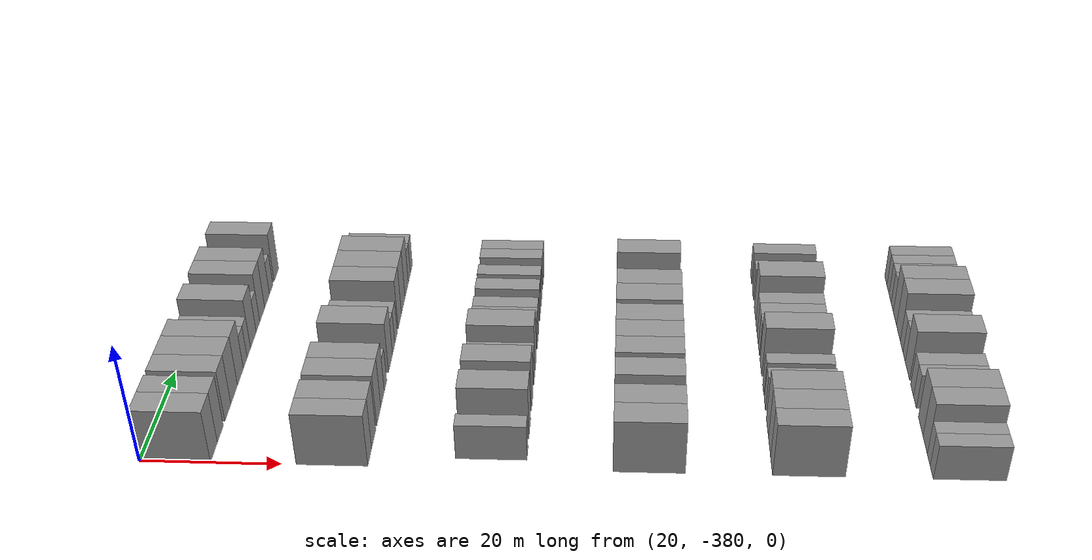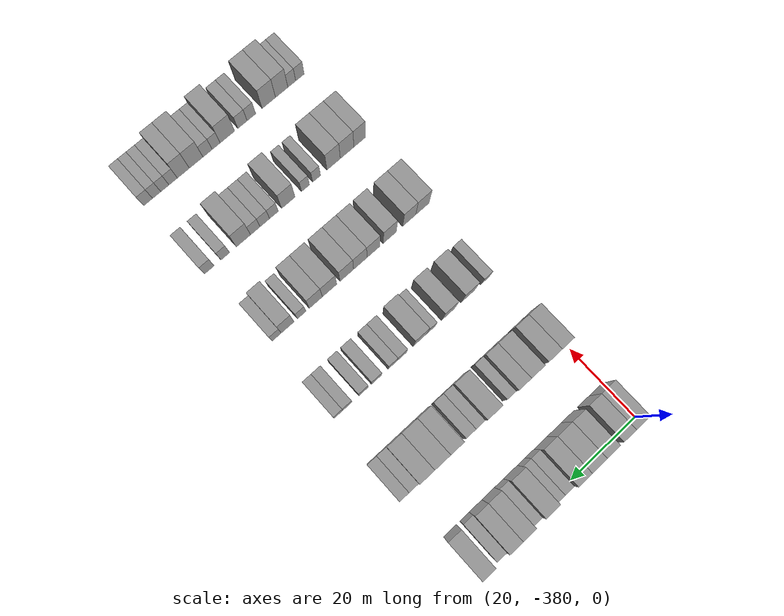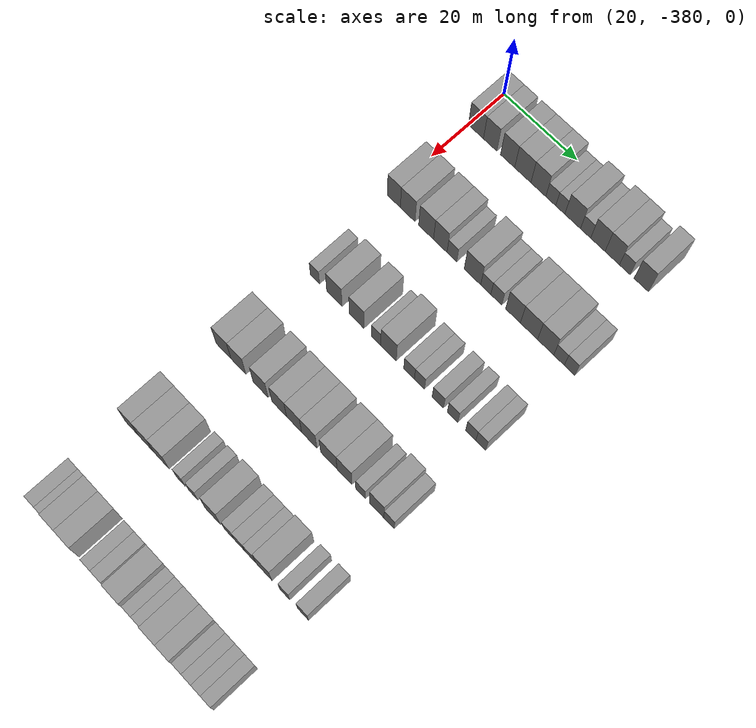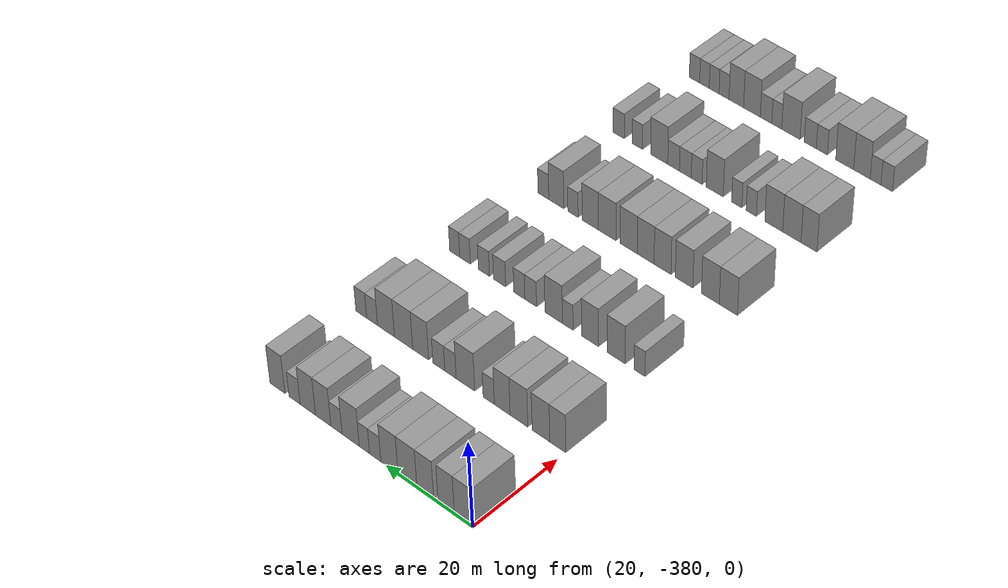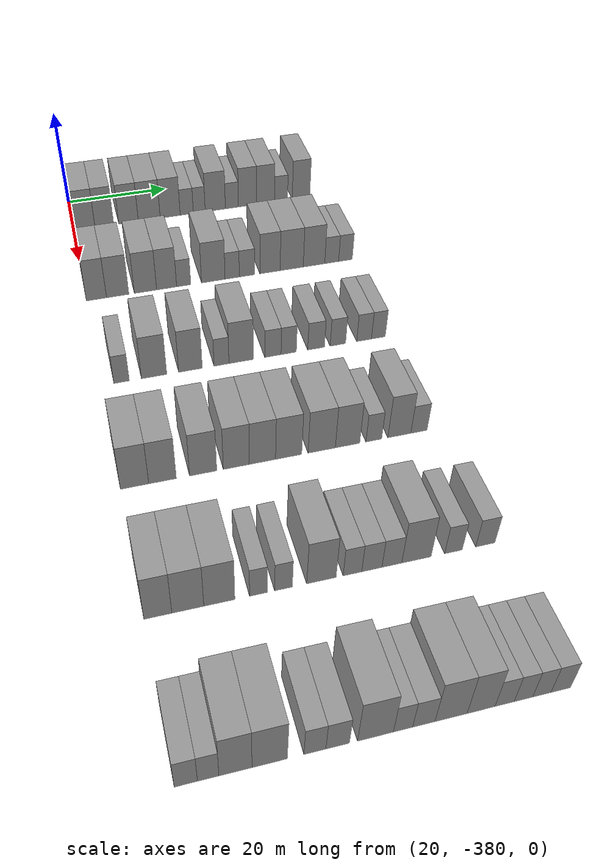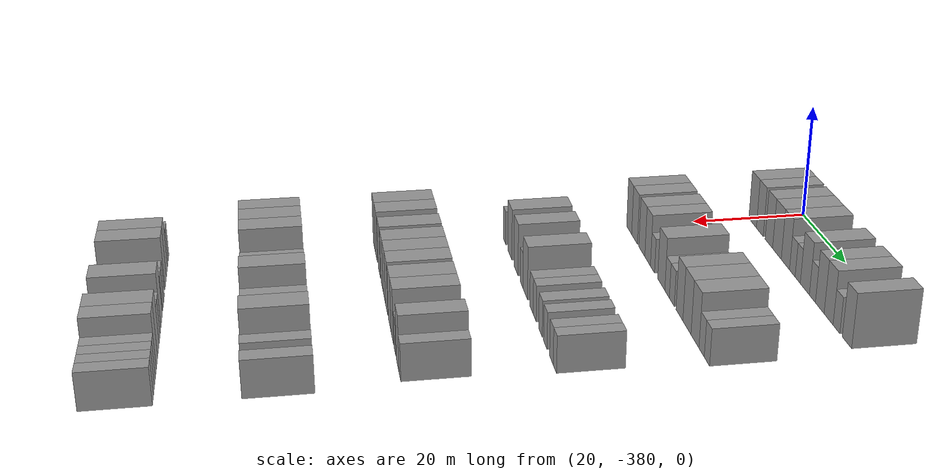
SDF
<sdf version="1.6">
 <world name="default">
  <model name="building_1">
   <static>1</static>
   <pose>25.0000 -377.9014 0 0.000000 0.000000 0.000000</pose>
   <link name="link">
    <pose>0 0 4.50 0 0 0</pose>
    <collision name="collision"><geometry><box><size>10.0000 4.1972 9.0000</size></box></geometry></collision>
    <visual name="visual">
     <cast_shadows>0</cast_shadows>
     <geometry><box><size>10.0000 4.1972 9.0000</size></box></geometry>
     <material>
      <script>
       <uri>model://grey_wall/materials/scripts</uri>
       <uri>model://grey_wall/materials/textures</uri>
       <name>vrc/grey_wall</name>
      </script>
     </material>
    </visual>
   </link>
  </model>
  <model name="building_2">
   <static>1</static>
   <pose>25.0000 -373.9525 0 0.000000 0.000000 0.000000</pose>
   <link name="link">
    <pose>0 0 4.50 0 0 0</pose>
    <collision name="collision"><geometry><box><size>10.0000 3.7007 9.0000</size></box></geometry></collision>
    <visual name="visual">
     <cast_shadows>0</cast_shadows>
     <geometry><box><size>10.0000 3.7007 9.0000</size></box></geometry>
     <material>
      <script>
       <uri>model://grey_wall/materials/scripts</uri>
       <uri>model://grey_wall/materials/textures</uri>
       <name>vrc/grey_wall</name>
      </script>
     </material>
    </visual>
   </link>
  </model>
  <model name="building_3">
   <static>1</static>
   <pose>25.0000 -369.1578 0 0.000000 0.000000 0.000000</pose>
   <link name="link">
    <pose>0 0 4.50 0 0 0</pose>
    <collision name="collision"><geometry><box><size>10.0000 3.8887 9.0000</size></box></geometry></collision>
    <visual name="visual">
     <cast_shadows>0</cast_shadows>
     <geometry><box><size>10.0000 3.8887 9.0000</size></box></geometry>
     <material>
      <script>
       <uri>model://grey_wall/materials/scripts</uri>
       <uri>model://grey_wall/materials/textures</uri>
       <name>vrc/grey_wall</name>
      </script>
     </material>
    </visual>
   </link>
  </model>
  <model name="building_4">
   <static>1</static>
   <pose>25.0000 -365.0094 0 0.000000 0.000000 0.000000</pose>
   <link name="link">
    <pose>0 0 4.50 0 0 0</pose>
    <collision name="collision"><geometry><box><size>10.0000 4.4080 9.0000</size></box></geometry></collision>
    <visual name="visual">
     <cast_shadows>0</cast_shadows>
     <geometry><box><size>10.0000 4.4080 9.0000</size></box></geometry>
     <material>
      <script>
       <uri>model://grey_wall/materials/scripts</uri>
       <uri>model://grey_wall/materials/textures</uri>
       <name>vrc/grey_wall</name>
      </script>
     </material>
    </visual>
   </link>
  </model>
  <model name="building_5">
   <static>1</static>
   <pose>25.0000 -360.7854 0 0.000000 0.000000 0.000000</pose>
   <link name="link">
    <pose>0 0 4.50 0 0 0</pose>
    <collision name="collision"><geometry><box><size>10.0000 4.0401 9.0000</size></box></geometry></collision>
    <visual name="visual">
     <cast_shadows>0</cast_shadows>
     <geometry><box><size>10.0000 4.0401 9.0000</size></box></geometry>
     <material>
      <script>
       <uri>model://grey_wall/materials/scripts</uri>
       <uri>model://grey_wall/materials/textures</uri>
       <name>vrc/grey_wall</name>
      </script>
     </material>
    </visual>
   </link>
  </model>
  <model name="building_6">
   <static>1</static>
   <pose>25.0000 -357.4255 0 0.000000 0.000000 0.000000</pose>
   <link name="link">
    <pose>0 0 3.00 0 0 0</pose>
    <collision name="collision"><geometry><box><size>10.0000 2.6798 6.0000</size></box></geometry></collision>
    <visual name="visual">
     <cast_shadows>0</cast_shadows>
     <geometry><box><size>10.0000 2.6798 6.0000</size></box></geometry>
     <material>
      <script>
       <uri>model://grey_wall/materials/scripts</uri>
       <uri>model://grey_wall/materials/textures</uri>
       <name>vrc/grey_wall</name>
      </script>
     </material>
    </visual>
   </link>
  </model>
  <model name="building_7">
   <static>1</static>
   <pose>25.0000 -354.8704 0 0.000000 0.000000 0.000000</pose>
   <link name="link">
    <pose>0 0 3.00 0 0 0</pose>
    <collision name="collision"><geometry><box><size>10.0000 2.4304 6.0000</size></box></geometry></collision>
    <visual name="visual">
     <cast_shadows>0</cast_shadows>
     <geometry><box><size>10.0000 2.4304 6.0000</size></box></geometry>
     <material>
      <script>
       <uri>model://grey_wall/materials/scripts</uri>
       <uri>model://grey_wall/materials/textures</uri>
       <name>vrc/grey_wall</name>
      </script>
     </material>
    </visual>
   </link>
  </model>
  <model name="building_8">
   <static>1</static>
   <pose>25.0000 -351.5773 0 0.000000 0.000000 0.000000</pose>
   <link name="link">
    <pose>0 0 4.50 0 0 0</pose>
    <collision name="collision"><geometry><box><size>10.0000 4.1559 9.0000</size></box></geometry></collision>
    <visual name="visual">
     <cast_shadows>0</cast_shadows>
     <geometry><box><size>10.0000 4.1559 9.0000</size></box></geometry>
     <material>
      <script>
       <uri>model://grey_wall/materials/scripts</uri>
       <uri>model://grey_wall/materials/textures</uri>
       <name>vrc/grey_wall</name>
      </script>
     </material>
    </visual>
   </link>
  </model>
  <model name="building_9">
   <static>1</static>
   <pose>25.0000 -348.1490 0 0.000000 0.000000 0.000000</pose>
   <link name="link">
    <pose>0 0 3.00 0 0 0</pose>
    <collision name="collision"><geometry><box><size>10.0000 2.7007 6.0000</size></box></geometry></collision>
    <visual name="visual">
     <cast_shadows>0</cast_shadows>
     <geometry><box><size>10.0000 2.7007 6.0000</size></box></geometry>
     <material>
      <script>
       <uri>model://grey_wall/materials/scripts</uri>
       <uri>model://grey_wall/materials/textures</uri>
       <name>vrc/grey_wall</name>
      </script>
     </material>
    </visual>
   </link>
  </model>
  <model name="building_10">
   <static>1</static>
   <pose>25.0000 -344.9133 0 0.000000 0.000000 0.000000</pose>
   <link name="link">
    <pose>0 0 4.50 0 0 0</pose>
    <collision name="collision"><geometry><box><size>10.0000 3.7708 9.0000</size></box></geometry></collision>
    <visual name="visual">
     <cast_shadows>0</cast_shadows>
     <geometry><box><size>10.0000 3.7708 9.0000</size></box></geometry>
     <material>
      <script>
       <uri>model://grey_wall/materials/scripts</uri>
       <uri>model://grey_wall/materials/textures</uri>
       <name>vrc/grey_wall</name>
      </script>
     </material>
    </visual>
   </link>
  </model>
  <model name="building_11">
   <static>1</static>
   <pose>25.0000 -341.1425 0 0.000000 0.000000 0.000000</pose>
   <link name="link">
    <pose>0 0 4.50 0 0 0</pose>
    <collision name="collision"><geometry><box><size>10.0000 3.7708 9.0000</size></box></geometry></collision>
    <visual name="visual">
     <cast_shadows>0</cast_shadows>
     <geometry><box><size>10.0000 3.7708 9.0000</size></box></geometry>
     <material>
      <script>
       <uri>model://grey_wall/materials/scripts</uri>
       <uri>model://grey_wall/materials/textures</uri>
       <name>vrc/grey_wall</name>
      </script>
     </material>
    </visual>
   </link>
  </model>
  <model name="building_12">
   <static>1</static>
   <pose>25.0000 -337.8733 0 0.000000 0.000000 0.000000</pose>
   <link name="link">
    <pose>0 0 3.00 0 0 0</pose>
    <collision name="collision"><geometry><box><size>10.0000 2.7677 6.0000</size></box></geometry></collision>
    <visual name="visual">
     <cast_shadows>0</cast_shadows>
     <geometry><box><size>10.0000 2.7677 6.0000</size></box></geometry>
     <material>
      <script>
       <uri>model://grey_wall/materials/scripts</uri>
       <uri>model://grey_wall/materials/textures</uri>
       <name>vrc/grey_wall</name>
      </script>
     </material>
    </visual>
   </link>
  </model>
  <model name="building_13">
   <static>1</static>
   <pose>25.0000 -333.6231 0 0.000000 0.000000 0.000000</pose>
   <link name="link">
    <pose>0 0 4.50 0 0 0</pose>
    <collision name="collision"><geometry><box><size>10.0000 3.7328 9.0000</size></box></geometry></collision>
    <visual name="visual">
     <cast_shadows>0</cast_shadows>
     <geometry><box><size>10.0000 3.7328 9.0000</size></box></geometry>
     <material>
      <script>
       <uri>model://grey_wall/materials/scripts</uri>
       <uri>model://grey_wall/materials/textures</uri>
       <name>vrc/grey_wall</name>
      </script>
     </material>
    </visual>
   </link>
  </model>
  <model name="building_191">
   <static>1</static>
   <pose>47.0000 -378.1825 0 0.000000 0.000000 0.000000</pose>
   <link name="link">
    <pose>0 0 4.50 0 0 0</pose>
    <collision name="collision"><geometry><box><size>10.0000 3.6349 9.0000</size></box></geometry></collision>
    <visual name="visual">
     <cast_shadows>0</cast_shadows>
     <geometry><box><size>10.0000 3.6349 9.0000</size></box></geometry>
     <material>
      <script>
       <uri>model://grey_wall/materials/scripts</uri>
       <uri>model://grey_wall/materials/textures</uri>
       <name>vrc/grey_wall</name>
      </script>
     </material>
    </visual>
   </link>
  </model>
  <model name="building_192">
   <static>1</static>
   <pose>47.0000 -374.3386 0 0.000000 0.000000 0.000000</pose>
   <link name="link">
    <pose>0 0 4.50 0 0 0</pose>
    <collision name="collision"><geometry><box><size>10.0000 4.0531 9.0000</size></box></geometry></collision>
    <visual name="visual">
     <cast_shadows>0</cast_shadows>
     <geometry><box><size>10.0000 4.0531 9.0000</size></box></geometry>
     <material>
      <script>
       <uri>model://grey_wall/materials/scripts</uri>
       <uri>model://grey_wall/materials/textures</uri>
       <name>vrc/grey_wall</name>
      </script>
     </material>
    </visual>
   </link>
  </model>
  <model name="building_193">
   <static>1</static>
   <pose>47.0000 -369.2678 0 0.000000 0.000000 0.000000</pose>
   <link name="link">
    <pose>0 0 4.50 0 0 0</pose>
    <collision name="collision"><geometry><box><size>10.0000 4.0885 9.0000</size></box></geometry></collision>
    <visual name="visual">
     <cast_shadows>0</cast_shadows>
     <geometry><box><size>10.0000 4.0885 9.0000</size></box></geometry>
     <material>
      <script>
       <uri>model://grey_wall/materials/scripts</uri>
       <uri>model://grey_wall/materials/textures</uri>
       <name>vrc/grey_wall</name>
      </script>
     </material>
    </visual>
   </link>
  </model>
  <model name="building_194">
   <static>1</static>
   <pose>47.0000 -365.3799 0 0.000000 0.000000 0.000000</pose>
   <link name="link">
    <pose>0 0 4.50 0 0 0</pose>
    <collision name="collision"><geometry><box><size>10.0000 3.6872 9.0000</size></box></geometry></collision>
    <visual name="visual">
     <cast_shadows>0</cast_shadows>
     <geometry><box><size>10.0000 3.6872 9.0000</size></box></geometry>
     <material>
      <script>
       <uri>model://grey_wall/materials/scripts</uri>
       <uri>model://grey_wall/materials/textures</uri>
       <name>vrc/grey_wall</name>
      </script>
     </material>
    </visual>
   </link>
  </model>
  <model name="building_195">
   <static>1</static>
   <pose>47.0000 -362.2163 0 0.000000 0.000000 0.000000</pose>
   <link name="link">
    <pose>0 0 3.00 0 0 0</pose>
    <collision name="collision"><geometry><box><size>10.0000 2.6401 6.0000</size></box></geometry></collision>
    <visual name="visual">
     <cast_shadows>0</cast_shadows>
     <geometry><box><size>10.0000 2.6401 6.0000</size></box></geometry>
     <material>
      <script>
       <uri>model://grey_wall/materials/scripts</uri>
       <uri>model://grey_wall/materials/textures</uri>
       <name>vrc/grey_wall</name>
      </script>
     </material>
    </visual>
   </link>
  </model>
  <model name="building_196">
   <static>1</static>
   <pose>47.0000 -356.6813 0 0.000000 0.000000 0.000000</pose>
   <link name="link">
    <pose>0 0 4.50 0 0 0</pose>
    <collision name="collision"><geometry><box><size>10.0000 4.4299 9.0000</size></box></geometry></collision>
    <visual name="visual">
     <cast_shadows>0</cast_shadows>
     <geometry><box><size>10.0000 4.4299 9.0000</size></box></geometry>
     <material>
      <script>
       <uri>model://grey_wall/materials/scripts</uri>
       <uri>model://grey_wall/materials/textures</uri>
       <name>vrc/grey_wall</name>
      </script>
     </material>
    </visual>
   </link>
  </model>
  <model name="building_197">
   <static>1</static>
   <pose>47.0000 -353.1163 0 0.000000 0.000000 0.000000</pose>
   <link name="link">
    <pose>0 0 3.00 0 0 0</pose>
    <collision name="collision"><geometry><box><size>10.0000 2.7001 6.0000</size></box></geometry></collision>
    <visual name="visual">
     <cast_shadows>0</cast_shadows>
     <geometry><box><size>10.0000 2.7001 6.0000</size></box></geometry>
     <material>
      <script>
       <uri>model://grey_wall/materials/scripts</uri>
       <uri>model://grey_wall/materials/textures</uri>
       <name>vrc/grey_wall</name>
      </script>
     </material>
    </visual>
   </link>
  </model>
  <model name="building_198">
   <static>1</static>
   <pose>47.0000 -350.3089 0 0.000000 0.000000 0.000000</pose>
   <link name="link">
    <pose>0 0 3.00 0 0 0</pose>
    <collision name="collision"><geometry><box><size>10.0000 2.9145 6.0000</size></box></geometry></collision>
    <visual name="visual">
     <cast_shadows>0</cast_shadows>
     <geometry><box><size>10.0000 2.9145 6.0000</size></box></geometry>
     <material>
      <script>
       <uri>model://grey_wall/materials/scripts</uri>
       <uri>model://grey_wall/materials/textures</uri>
       <name>vrc/grey_wall</name>
      </script>
     </material>
    </visual>
   </link>
  </model>
  <model name="building_199">
   <static>1</static>
   <pose>47.0000 -345.9016 0 0.000000 0.000000 0.000000</pose>
   <link name="link">
    <pose>0 0 4.50 0 0 0</pose>
    <collision name="collision"><geometry><box><size>10.0000 3.9001 9.0000</size></box></geometry></collision>
    <visual name="visual">
     <cast_shadows>0</cast_shadows>
     <geometry><box><size>10.0000 3.9001 9.0000</size></box></geometry>
     <material>
      <script>
       <uri>model://grey_wall/materials/scripts</uri>
       <uri>model://grey_wall/materials/textures</uri>
       <name>vrc/grey_wall</name>
      </script>
     </material>
    </visual>
   </link>
  </model>
  <model name="building_200">
   <static>1</static>
   <pose>47.0000 -341.7060 0 0.000000 0.000000 0.000000</pose>
   <link name="link">
    <pose>0 0 4.50 0 0 0</pose>
    <collision name="collision"><geometry><box><size>10.0000 4.4913 9.0000</size></box></geometry></collision>
    <visual name="visual">
     <cast_shadows>0</cast_shadows>
     <geometry><box><size>10.0000 4.4913 9.0000</size></box></geometry>
     <material>
      <script>
       <uri>model://grey_wall/materials/scripts</uri>
       <uri>model://grey_wall/materials/textures</uri>
       <name>vrc/grey_wall</name>
      </script>
     </material>
    </visual>
   </link>
  </model>
  <model name="building_201">
   <static>1</static>
   <pose>47.0000 -337.3600 0 0.000000 0.000000 0.000000</pose>
   <link name="link">
    <pose>0 0 4.50 0 0 0</pose>
    <collision name="collision"><geometry><box><size>10.0000 4.2006 9.0000</size></box></geometry></collision>
    <visual name="visual">
     <cast_shadows>0</cast_shadows>
     <geometry><box><size>10.0000 4.2006 9.0000</size></box></geometry>
     <material>
      <script>
       <uri>model://grey_wall/materials/scripts</uri>
       <uri>model://grey_wall/materials/textures</uri>
       <name>vrc/grey_wall</name>
      </script>
     </material>
    </visual>
   </link>
  </model>
  <model name="building_202">
   <static>1</static>
   <pose>47.0000 -333.8903 0 0.000000 0.000000 0.000000</pose>
   <link name="link">
    <pose>0 0 3.00 0 0 0</pose>
    <collision name="collision"><geometry><box><size>10.0000 2.7387 6.0000</size></box></geometry></collision>
    <visual name="visual">
     <cast_shadows>0</cast_shadows>
     <geometry><box><size>10.0000 2.7387 6.0000</size></box></geometry>
     <material>
      <script>
       <uri>model://grey_wall/materials/scripts</uri>
       <uri>model://grey_wall/materials/textures</uri>
       <name>vrc/grey_wall</name>
      </script>
     </material>
    </visual>
   </link>
  </model>
  <model name="building_203">
   <static>1</static>
   <pose>47.0000 -331.1768 0 0.000000 0.000000 0.000000</pose>
   <link name="link">
    <pose>0 0 3.00 0 0 0</pose>
    <collision name="collision"><geometry><box><size>10.0000 2.6884 6.0000</size></box></geometry></collision>
    <visual name="visual">
     <cast_shadows>0</cast_shadows>
     <geometry><box><size>10.0000 2.6884 6.0000</size></box></geometry>
     <material>
      <script>
       <uri>model://grey_wall/materials/scripts</uri>
       <uri>model://grey_wall/materials/textures</uri>
       <name>vrc/grey_wall</name>
      </script>
     </material>
    </visual>
   </link>
  </model>
  <model name="building_376">
   <static>1</static>
   <pose>69.0000 -376.7275 0 0.000000 0.000000 0.000000</pose>
   <link name="link">
    <pose>0 0 3.00 0 0 0</pose>
    <collision name="collision"><geometry><box><size>10.0000 2.5449 6.0000</size></box></geometry></collision>
    <visual name="visual">
     <cast_shadows>0</cast_shadows>
     <geometry><box><size>10.0000 2.5449 6.0000</size></box></geometry>
     <material>
      <script>
       <uri>model://grey_wall/materials/scripts</uri>
       <uri>model://grey_wall/materials/textures</uri>
       <name>vrc/grey_wall</name>
      </script>
     </material>
    </visual>
   </link>
  </model>
  <model name="building_377">
   <static>1</static>
   <pose>69.0000 -371.3467 0 0.000000 0.000000 0.000000</pose>
   <link name="link">
    <pose>0 0 4.50 0 0 0</pose>
    <collision name="collision"><geometry><box><size>10.0000 4.2168 9.0000</size></box></geometry></collision>
    <visual name="visual">
     <cast_shadows>0</cast_shadows>
     <geometry><box><size>10.0000 4.2168 9.0000</size></box></geometry>
     <material>
      <script>
       <uri>model://grey_wall/materials/scripts</uri>
       <uri>model://grey_wall/materials/textures</uri>
       <name>vrc/grey_wall</name>
      </script>
     </material>
    </visual>
   </link>
  </model>
  <model name="building_378">
   <static>1</static>
   <pose>69.0000 -365.2452 0 0.000000 0.000000 0.000000</pose>
   <link name="link">
    <pose>0 0 4.50 0 0 0</pose>
    <collision name="collision"><geometry><box><size>10.0000 3.9862 9.0000</size></box></geometry></collision>
    <visual name="visual">
     <cast_shadows>0</cast_shadows>
     <geometry><box><size>10.0000 3.9862 9.0000</size></box></geometry>
     <material>
      <script>
       <uri>model://grey_wall/materials/scripts</uri>
       <uri>model://grey_wall/materials/textures</uri>
       <name>vrc/grey_wall</name>
      </script>
     </material>
    </visual>
   </link>
  </model>
  <model name="building_379">
   <static>1</static>
   <pose>69.0000 -359.9796 0 0.000000 0.000000 0.000000</pose>
   <link name="link">
    <pose>0 0 3.00 0 0 0</pose>
    <collision name="collision"><geometry><box><size>10.0000 2.5451 6.0000</size></box></geometry></collision>
    <visual name="visual">
     <cast_shadows>0</cast_shadows>
     <geometry><box><size>10.0000 2.5451 6.0000</size></box></geometry>
     <material>
      <script>
       <uri>model://grey_wall/materials/scripts</uri>
       <uri>model://grey_wall/materials/textures</uri>
       <name>vrc/grey_wall</name>
      </script>
     </material>
    </visual>
   </link>
  </model>
  <model name="building_380">
   <static>1</static>
   <pose>69.0000 -356.6158 0 0.000000 0.000000 0.000000</pose>
   <link name="link">
    <pose>0 0 4.50 0 0 0</pose>
    <collision name="collision"><geometry><box><size>10.0000 4.1825 9.0000</size></box></geometry></collision>
    <visual name="visual">
     <cast_shadows>0</cast_shadows>
     <geometry><box><size>10.0000 4.1825 9.0000</size></box></geometry>
     <material>
      <script>
       <uri>model://grey_wall/materials/scripts</uri>
       <uri>model://grey_wall/materials/textures</uri>
       <name>vrc/grey_wall</name>
      </script>
     </material>
    </visual>
   </link>
  </model>
  <model name="building_381">
   <static>1</static>
   <pose>69.0000 -351.1021 0 0.000000 0.000000 0.000000</pose>
   <link name="link">
    <pose>0 0 3.00 0 0 0</pose>
    <collision name="collision"><geometry><box><size>10.0000 2.8450 6.0000</size></box></geometry></collision>
    <visual name="visual">
     <cast_shadows>0</cast_shadows>
     <geometry><box><size>10.0000 2.8450 6.0000</size></box></geometry>
     <material>
      <script>
       <uri>model://grey_wall/materials/scripts</uri>
       <uri>model://grey_wall/materials/textures</uri>
       <name>vrc/grey_wall</name>
      </script>
     </material>
    </visual>
   </link>
  </model>
  <model name="building_382">
   <static>1</static>
   <pose>69.0000 -348.3423 0 0.000000 0.000000 0.000000</pose>
   <link name="link">
    <pose>0 0 3.00 0 0 0</pose>
    <collision name="collision"><geometry><box><size>10.0000 2.6746 6.0000</size></box></geometry></collision>
    <visual name="visual">
     <cast_shadows>0</cast_shadows>
     <geometry><box><size>10.0000 2.6746 6.0000</size></box></geometry>
     <material>
      <script>
       <uri>model://grey_wall/materials/scripts</uri>
       <uri>model://grey_wall/materials/textures</uri>
       <name>vrc/grey_wall</name>
      </script>
     </material>
    </visual>
   </link>
  </model>
  <model name="building_383">
   <static>1</static>
   <pose>69.0000 -343.5119 0 0.000000 0.000000 0.000000</pose>
   <link name="link">
    <pose>0 0 3.00 0 0 0</pose>
    <collision name="collision"><geometry><box><size>10.0000 2.9861 6.0000</size></box></geometry></collision>
    <visual name="visual">
     <cast_shadows>0</cast_shadows>
     <geometry><box><size>10.0000 2.9861 6.0000</size></box></geometry>
     <material>
      <script>
       <uri>model://grey_wall/materials/scripts</uri>
       <uri>model://grey_wall/materials/textures</uri>
       <name>vrc/grey_wall</name>
      </script>
     </material>
    </visual>
   </link>
  </model>
  <model name="building_384">
   <static>1</static>
   <pose>69.0000 -339.6402 0 0.000000 0.000000 0.000000</pose>
   <link name="link">
    <pose>0 0 3.00 0 0 0</pose>
    <collision name="collision"><geometry><box><size>10.0000 2.7573 6.0000</size></box></geometry></collision>
    <visual name="visual">
     <cast_shadows>0</cast_shadows>
     <geometry><box><size>10.0000 2.7573 6.0000</size></box></geometry>
     <material>
      <script>
       <uri>model://grey_wall/materials/scripts</uri>
       <uri>model://grey_wall/materials/textures</uri>
       <name>vrc/grey_wall</name>
      </script>
     </material>
    </visual>
   </link>
  </model>
  <model name="building_385">
   <static>1</static>
   <pose>69.0000 -334.9316 0 0.000000 0.000000 0.000000</pose>
   <link name="link">
    <pose>0 0 3.00 0 0 0</pose>
    <collision name="collision"><geometry><box><size>10.0000 2.6599 6.0000</size></box></geometry></collision>
    <visual name="visual">
     <cast_shadows>0</cast_shadows>
     <geometry><box><size>10.0000 2.6599 6.0000</size></box></geometry>
     <material>
      <script>
       <uri>model://grey_wall/materials/scripts</uri>
       <uri>model://grey_wall/materials/textures</uri>
       <name>vrc/grey_wall</name>
      </script>
     </material>
    </visual>
   </link>
  </model>
  <model name="building_386">
   <static>1</static>
   <pose>69.0000 -332.3457 0 0.000000 0.000000 0.000000</pose>
   <link name="link">
    <pose>0 0 3.00 0 0 0</pose>
    <collision name="collision"><geometry><box><size>10.0000 2.5119 6.0000</size></box></geometry></collision>
    <visual name="visual">
     <cast_shadows>0</cast_shadows>
     <geometry><box><size>10.0000 2.5119 6.0000</size></box></geometry>
     <material>
      <script>
       <uri>model://grey_wall/materials/scripts</uri>
       <uri>model://grey_wall/materials/textures</uri>
       <name>vrc/grey_wall</name>
      </script>
     </material>
    </visual>
   </link>
  </model>
  <model name="building_560">
   <static>1</static>
   <pose>91.0000 -377.8980 0 0.000000 0.000000 0.000000</pose>
   <link name="link">
    <pose>0 0 4.50 0 0 0</pose>
    <collision name="collision"><geometry><box><size>10.0000 4.2041 9.0000</size></box></geometry></collision>
    <visual name="visual">
     <cast_shadows>0</cast_shadows>
     <geometry><box><size>10.0000 4.2041 9.0000</size></box></geometry>
     <material>
      <script>
       <uri>model://grey_wall/materials/scripts</uri>
       <uri>model://grey_wall/materials/textures</uri>
       <name>vrc/grey_wall</name>
      </script>
     </material>
    </visual>
   </link>
  </model>
  <model name="building_561">
   <static>1</static>
   <pose>91.0000 -373.7364 0 0.000000 0.000000 0.000000</pose>
   <link name="link">
    <pose>0 0 4.50 0 0 0</pose>
    <collision name="collision"><geometry><box><size>10.0000 4.1190 9.0000</size></box></geometry></collision>
    <visual name="visual">
     <cast_shadows>0</cast_shadows>
     <geometry><box><size>10.0000 4.1190 9.0000</size></box></geometry>
     <material>
      <script>
       <uri>model://grey_wall/materials/scripts</uri>
       <uri>model://grey_wall/materials/textures</uri>
       <name>vrc/grey_wall</name>
      </script>
     </material>
    </visual>
   </link>
  </model>
  <model name="building_562">
   <static>1</static>
   <pose>91.0000 -367.6117 0 0.000000 0.000000 0.000000</pose>
   <link name="link">
    <pose>0 0 4.50 0 0 0</pose>
    <collision name="collision"><geometry><box><size>10.0000 4.1303 9.0000</size></box></geometry></collision>
    <visual name="visual">
     <cast_shadows>0</cast_shadows>
     <geometry><box><size>10.0000 4.1303 9.0000</size></box></geometry>
     <material>
      <script>
       <uri>model://grey_wall/materials/scripts</uri>
       <uri>model://grey_wall/materials/textures</uri>
       <name>vrc/grey_wall</name>
      </script>
     </material>
    </visual>
   </link>
  </model>
  <model name="building_563">
   <static>1</static>
   <pose>91.0000 -362.5352 0 0.000000 0.000000 0.000000</pose>
   <link name="link">
    <pose>0 0 4.50 0 0 0</pose>
    <collision name="collision"><geometry><box><size>10.0000 4.0228 9.0000</size></box></geometry></collision>
    <visual name="visual">
     <cast_shadows>0</cast_shadows>
     <geometry><box><size>10.0000 4.0228 9.0000</size></box></geometry>
     <material>
      <script>
       <uri>model://grey_wall/materials/scripts</uri>
       <uri>model://grey_wall/materials/textures</uri>
       <name>vrc/grey_wall</name>
      </script>
     </material>
    </visual>
   </link>
  </model>
  <model name="building_564">
   <static>1</static>
   <pose>91.0000 -358.4933 0 0.000000 0.000000 0.000000</pose>
   <link name="link">
    <pose>0 0 4.50 0 0 0</pose>
    <collision name="collision"><geometry><box><size>10.0000 4.0609 9.0000</size></box></geometry></collision>
    <visual name="visual">
     <cast_shadows>0</cast_shadows>
     <geometry><box><size>10.0000 4.0609 9.0000</size></box></geometry>
     <material>
      <script>
       <uri>model://grey_wall/materials/scripts</uri>
       <uri>model://grey_wall/materials/textures</uri>
       <name>vrc/grey_wall</name>
      </script>
     </material>
    </visual>
   </link>
  </model>
  <model name="building_565">
   <static>1</static>
   <pose>91.0000 -354.4059 0 0.000000 0.000000 0.000000</pose>
   <link name="link">
    <pose>0 0 4.50 0 0 0</pose>
    <collision name="collision"><geometry><box><size>10.0000 4.1139 9.0000</size></box></geometry></collision>
    <visual name="visual">
     <cast_shadows>0</cast_shadows>
     <geometry><box><size>10.0000 4.1139 9.0000</size></box></geometry>
     <material>
      <script>
       <uri>model://grey_wall/materials/scripts</uri>
       <uri>model://grey_wall/materials/textures</uri>
       <name>vrc/grey_wall</name>
      </script>
     </material>
    </visual>
   </link>
  </model>
  <model name="building_566">
   <static>1</static>
   <pose>91.0000 -349.1775 0 0.000000 0.000000 0.000000</pose>
   <link name="link">
    <pose>0 0 4.50 0 0 0</pose>
    <collision name="collision"><geometry><box><size>10.0000 4.3428 9.0000</size></box></geometry></collision>
    <visual name="visual">
     <cast_shadows>0</cast_shadows>
     <geometry><box><size>10.0000 4.3428 9.0000</size></box></geometry>
     <material>
      <script>
       <uri>model://grey_wall/materials/scripts</uri>
       <uri>model://grey_wall/materials/textures</uri>
       <name>vrc/grey_wall</name>
      </script>
     </material>
    </visual>
   </link>
  </model>
  <model name="building_567">
   <static>1</static>
   <pose>91.0000 -345.0442 0 0.000000 0.000000 0.000000</pose>
   <link name="link">
    <pose>0 0 4.50 0 0 0</pose>
    <collision name="collision"><geometry><box><size>10.0000 3.9239 9.0000</size></box></geometry></collision>
    <visual name="visual">
     <cast_shadows>0</cast_shadows>
     <geometry><box><size>10.0000 3.9239 9.0000</size></box></geometry>
     <material>
      <script>
       <uri>model://grey_wall/materials/scripts</uri>
       <uri>model://grey_wall/materials/textures</uri>
       <name>vrc/grey_wall</name>
      </script>
     </material>
    </visual>
   </link>
  </model>
  <model name="building_568">
   <static>1</static>
   <pose>91.0000 -340.8019 0 0.000000 0.000000 0.000000</pose>
   <link name="link">
    <pose>0 0 3.00 0 0 0</pose>
    <collision name="collision"><geometry><box><size>10.0000 2.5607 6.0000</size></box></geometry></collision>
    <visual name="visual">
     <cast_shadows>0</cast_shadows>
     <geometry><box><size>10.0000 2.5607 6.0000</size></box></geometry>
     <material>
      <script>
       <uri>model://grey_wall/materials/scripts</uri>
       <uri>model://grey_wall/materials/textures</uri>
       <name>vrc/grey_wall</name>
      </script>
     </material>
    </visual>
   </link>
  </model>
  <model name="building_569">
   <static>1</static>
   <pose>91.0000 -336.6332 0 0.000000 0.000000 0.000000</pose>
   <link name="link">
    <pose>0 0 4.50 0 0 0</pose>
    <collision name="collision"><geometry><box><size>10.0000 3.7766 9.0000</size></box></geometry></collision>
    <visual name="visual">
     <cast_shadows>0</cast_shadows>
     <geometry><box><size>10.0000 3.7766 9.0000</size></box></geometry>
     <material>
      <script>
       <uri>model://grey_wall/materials/scripts</uri>
       <uri>model://grey_wall/materials/textures</uri>
       <name>vrc/grey_wall</name>
      </script>
     </material>
    </visual>
   </link>
  </model>
  <model name="building_570">
   <static>1</static>
   <pose>91.0000 -333.4052 0 0.000000 0.000000 0.000000</pose>
   <link name="link">
    <pose>0 0 3.00 0 0 0</pose>
    <collision name="collision"><geometry><box><size>10.0000 2.6794 6.0000</size></box></geometry></collision>
    <visual name="visual">
     <cast_shadows>0</cast_shadows>
     <geometry><box><size>10.0000 2.6794 6.0000</size></box></geometry>
     <material>
      <script>
       <uri>model://grey_wall/materials/scripts</uri>
       <uri>model://grey_wall/materials/textures</uri>
       <name>vrc/grey_wall</name>
      </script>
     </material>
    </visual>
   </link>
  </model>
  <model name="building_743">
   <static>1</static>
   <pose>113.0000 -378.1537 0 0.000000 0.000000 0.000000</pose>
   <link name="link">
    <pose>0 0 4.50 0 0 0</pose>
    <collision name="collision"><geometry><box><size>10.0000 3.6926 9.0000</size></box></geometry></collision>
    <visual name="visual">
     <cast_shadows>0</cast_shadows>
     <geometry><box><size>10.0000 3.6926 9.0000</size></box></geometry>
     <material>
      <script>
       <uri>model://grey_wall/materials/scripts</uri>
       <uri>model://grey_wall/materials/textures</uri>
       <name>vrc/grey_wall</name>
      </script>
     </material>
    </visual>
   </link>
  </model>
  <model name="building_744">
   <static>1</static>
   <pose>113.0000 -374.1718 0 0.000000 0.000000 0.000000</pose>
   <link name="link">
    <pose>0 0 4.50 0 0 0</pose>
    <collision name="collision"><geometry><box><size>10.0000 4.2712 9.0000</size></box></geometry></collision>
    <visual name="visual">
     <cast_shadows>0</cast_shadows>
     <geometry><box><size>10.0000 4.2712 9.0000</size></box></geometry>
     <material>
      <script>
       <uri>model://grey_wall/materials/scripts</uri>
       <uri>model://grey_wall/materials/textures</uri>
       <name>vrc/grey_wall</name>
      </script>
     </material>
    </visual>
   </link>
  </model>
  <model name="building_745">
   <static>1</static>
   <pose>113.0000 -369.9419 0 0.000000 0.000000 0.000000</pose>
   <link name="link">
    <pose>0 0 4.50 0 0 0</pose>
    <collision name="collision"><geometry><box><size>10.0000 4.1886 9.0000</size></box></geometry></collision>
    <visual name="visual">
     <cast_shadows>0</cast_shadows>
     <geometry><box><size>10.0000 4.1886 9.0000</size></box></geometry>
     <material>
      <script>
       <uri>model://grey_wall/materials/scripts</uri>
       <uri>model://grey_wall/materials/textures</uri>
       <name>vrc/grey_wall</name>
      </script>
     </material>
    </visual>
   </link>
  </model>
  <model name="building_746">
   <static>1</static>
   <pose>113.0000 -364.6315 0 0.000000 0.000000 0.000000</pose>
   <link name="link">
    <pose>0 0 3.00 0 0 0</pose>
    <collision name="collision"><geometry><box><size>10.0000 2.4324 6.0000</size></box></geometry></collision>
    <visual name="visual">
     <cast_shadows>0</cast_shadows>
     <geometry><box><size>10.0000 2.4324 6.0000</size></box></geometry>
     <material>
      <script>
       <uri>model://grey_wall/materials/scripts</uri>
       <uri>model://grey_wall/materials/textures</uri>
       <name>vrc/grey_wall</name>
      </script>
     </material>
    </visual>
   </link>
  </model>
  <model name="building_747">
   <static>1</static>
   <pose>113.0000 -361.1857 0 0.000000 0.000000 0.000000</pose>
   <link name="link">
    <pose>0 0 3.00 0 0 0</pose>
    <collision name="collision"><geometry><box><size>10.0000 2.4591 6.0000</size></box></geometry></collision>
    <visual name="visual">
     <cast_shadows>0</cast_shadows>
     <geometry><box><size>10.0000 2.4591 6.0000</size></box></geometry>
     <material>
      <script>
       <uri>model://grey_wall/materials/scripts</uri>
       <uri>model://grey_wall/materials/textures</uri>
       <name>vrc/grey_wall</name>
      </script>
     </material>
    </visual>
   </link>
  </model>
  <model name="building_748">
   <static>1</static>
   <pose>113.0000 -355.8878 0 0.000000 0.000000 0.000000</pose>
   <link name="link">
    <pose>0 0 4.50 0 0 0</pose>
    <collision name="collision"><geometry><box><size>10.0000 4.1368 9.0000</size></box></geometry></collision>
    <visual name="visual">
     <cast_shadows>0</cast_shadows>
     <geometry><box><size>10.0000 4.1368 9.0000</size></box></geometry>
     <material>
      <script>
       <uri>model://grey_wall/materials/scripts</uri>
       <uri>model://grey_wall/materials/textures</uri>
       <name>vrc/grey_wall</name>
      </script>
     </material>
    </visual>
   </link>
  </model>
  <model name="building_749">
   <static>1</static>
   <pose>113.0000 -351.4961 0 0.000000 0.000000 0.000000</pose>
   <link name="link">
    <pose>0 0 3.00 0 0 0</pose>
    <collision name="collision"><geometry><box><size>10.0000 2.6465 6.0000</size></box></geometry></collision>
    <visual name="visual">
     <cast_shadows>0</cast_shadows>
     <geometry><box><size>10.0000 2.6465 6.0000</size></box></geometry>
     <material>
      <script>
       <uri>model://grey_wall/materials/scripts</uri>
       <uri>model://grey_wall/materials/textures</uri>
       <name>vrc/grey_wall</name>
      </script>
     </material>
    </visual>
   </link>
  </model>
  <model name="building_750">
   <static>1</static>
   <pose>113.0000 -348.7234 0 0.000000 0.000000 0.000000</pose>
   <link name="link">
    <pose>0 0 3.00 0 0 0</pose>
    <collision name="collision"><geometry><box><size>10.0000 2.8990 6.0000</size></box></geometry></collision>
    <visual name="visual">
     <cast_shadows>0</cast_shadows>
     <geometry><box><size>10.0000 2.8990 6.0000</size></box></geometry>
     <material>
      <script>
       <uri>model://grey_wall/materials/scripts</uri>
       <uri>model://grey_wall/materials/textures</uri>
       <name>vrc/grey_wall</name>
      </script>
     </material>
    </visual>
   </link>
  </model>
  <model name="building_751">
   <static>1</static>
   <pose>113.0000 -345.8393 0 0.000000 0.000000 0.000000</pose>
   <link name="link">
    <pose>0 0 3.00 0 0 0</pose>
    <collision name="collision"><geometry><box><size>10.0000 2.8691 6.0000</size></box></geometry></collision>
    <visual name="visual">
     <cast_shadows>0</cast_shadows>
     <geometry><box><size>10.0000 2.8691 6.0000</size></box></geometry>
     <material>
      <script>
       <uri>model://grey_wall/materials/scripts</uri>
       <uri>model://grey_wall/materials/textures</uri>
       <name>vrc/grey_wall</name>
      </script>
     </material>
    </visual>
   </link>
  </model>
  <model name="building_752">
   <static>1</static>
   <pose>113.0000 -342.2700 0 0.000000 0.000000 0.000000</pose>
   <link name="link">
    <pose>0 0 4.50 0 0 0</pose>
    <collision name="collision"><geometry><box><size>10.0000 4.2695 9.0000</size></box></geometry></collision>
    <visual name="visual">
     <cast_shadows>0</cast_shadows>
     <geometry><box><size>10.0000 4.2695 9.0000</size></box></geometry>
     <material>
      <script>
       <uri>model://grey_wall/materials/scripts</uri>
       <uri>model://grey_wall/materials/textures</uri>
       <name>vrc/grey_wall</name>
      </script>
     </material>
    </visual>
   </link>
  </model>
  <model name="building_753">
   <static>1</static>
   <pose>113.0000 -336.8301 0 0.000000 0.000000 0.000000</pose>
   <link name="link">
    <pose>0 0 3.00 0 0 0</pose>
    <collision name="collision"><geometry><box><size>10.0000 2.6101 6.0000</size></box></geometry></collision>
    <visual name="visual">
     <cast_shadows>0</cast_shadows>
     <geometry><box><size>10.0000 2.6101 6.0000</size></box></geometry>
     <material>
      <script>
       <uri>model://grey_wall/materials/scripts</uri>
       <uri>model://grey_wall/materials/textures</uri>
       <name>vrc/grey_wall</name>
      </script>
     </material>
    </visual>
   </link>
  </model>
  <model name="building_754">
   <static>1</static>
   <pose>113.0000 -332.0858 0 0.000000 0.000000 0.000000</pose>
   <link name="link">
    <pose>0 0 3.00 0 0 0</pose>
    <collision name="collision"><geometry><box><size>10.0000 2.8785 6.0000</size></box></geometry></collision>
    <visual name="visual">
     <cast_shadows>0</cast_shadows>
     <geometry><box><size>10.0000 2.8785 6.0000</size></box></geometry>
     <material>
      <script>
       <uri>model://grey_wall/materials/scripts</uri>
       <uri>model://grey_wall/materials/textures</uri>
       <name>vrc/grey_wall</name>
      </script>
     </material>
    </visual>
   </link>
  </model>
  <model name="building_930">
   <static>1</static>
   <pose>135.0000 -378.6527 0 0.000000 0.000000 0.000000</pose>
   <link name="link">
    <pose>0 0 3.00 0 0 0</pose>
    <collision name="collision"><geometry><box><size>10.0000 2.6945 6.0000</size></box></geometry></collision>
    <visual name="visual">
     <cast_shadows>0</cast_shadows>
     <geometry><box><size>10.0000 2.6945 6.0000</size></box></geometry>
     <material>
      <script>
       <uri>model://grey_wall/materials/scripts</uri>
       <uri>model://grey_wall/materials/textures</uri>
       <name>vrc/grey_wall</name>
      </script>
     </material>
    </visual>
   </link>
  </model>
  <model name="building_931">
   <static>1</static>
   <pose>135.0000 -376.0555 0 0.000000 0.000000 0.000000</pose>
   <link name="link">
    <pose>0 0 3.00 0 0 0</pose>
    <collision name="collision"><geometry><box><size>10.0000 2.5000 6.0000</size></box></geometry></collision>
    <visual name="visual">
     <cast_shadows>0</cast_shadows>
     <geometry><box><size>10.0000 2.5000 6.0000</size></box></geometry>
     <material>
      <script>
       <uri>model://grey_wall/materials/scripts</uri>
       <uri>model://grey_wall/materials/textures</uri>
       <name>vrc/grey_wall</name>
      </script>
     </material>
    </visual>
   </link>
  </model>
  <model name="building_932">
   <static>1</static>
   <pose>135.0000 -372.8546 0 0.000000 0.000000 0.000000</pose>
   <link name="link">
    <pose>0 0 4.50 0 0 0</pose>
    <collision name="collision"><geometry><box><size>10.0000 3.9018 9.0000</size></box></geometry></collision>
    <visual name="visual">
     <cast_shadows>0</cast_shadows>
     <geometry><box><size>10.0000 3.9018 9.0000</size></box></geometry>
     <material>
      <script>
       <uri>model://grey_wall/materials/scripts</uri>
       <uri>model://grey_wall/materials/textures</uri>
       <name>vrc/grey_wall</name>
      </script>
     </material>
    </visual>
   </link>
  </model>
  <model name="building_933">
   <static>1</static>
   <pose>135.0000 -368.7907 0 0.000000 0.000000 0.000000</pose>
   <link name="link">
    <pose>0 0 4.50 0 0 0</pose>
    <collision name="collision"><geometry><box><size>10.0000 4.2260 9.0000</size></box></geometry></collision>
    <visual name="visual">
     <cast_shadows>0</cast_shadows>
     <geometry><box><size>10.0000 4.2260 9.0000</size></box></geometry>
     <material>
      <script>
       <uri>model://grey_wall/materials/scripts</uri>
       <uri>model://grey_wall/materials/textures</uri>
       <name>vrc/grey_wall</name>
      </script>
     </material>
    </visual>
   </link>
  </model>
  <model name="building_934">
   <static>1</static>
   <pose>135.0000 -363.3394 0 0.000000 0.000000 0.000000</pose>
   <link name="link">
    <pose>0 0 3.00 0 0 0</pose>
    <collision name="collision"><geometry><box><size>10.0000 2.6766 6.0000</size></box></geometry></collision>
    <visual name="visual">
     <cast_shadows>0</cast_shadows>
     <geometry><box><size>10.0000 2.6766 6.0000</size></box></geometry>
     <material>
      <script>
       <uri>model://grey_wall/materials/scripts</uri>
       <uri>model://grey_wall/materials/textures</uri>
       <name>vrc/grey_wall</name>
      </script>
     </material>
    </visual>
   </link>
  </model>
  <model name="building_935">
   <static>1</static>
   <pose>135.0000 -360.5538 0 0.000000 0.000000 0.000000</pose>
   <link name="link">
    <pose>0 0 3.00 0 0 0</pose>
    <collision name="collision"><geometry><box><size>10.0000 2.8946 6.0000</size></box></geometry></collision>
    <visual name="visual">
     <cast_shadows>0</cast_shadows>
     <geometry><box><size>10.0000 2.8946 6.0000</size></box></geometry>
     <material>
      <script>
       <uri>model://grey_wall/materials/scripts</uri>
       <uri>model://grey_wall/materials/textures</uri>
       <name>vrc/grey_wall</name>
      </script>
     </material>
    </visual>
   </link>
  </model>
  <model name="building_936">
   <static>1</static>
   <pose>135.0000 -355.8729 0 0.000000 0.000000 0.000000</pose>
   <link name="link">
    <pose>0 0 4.50 0 0 0</pose>
    <collision name="collision"><geometry><box><size>10.0000 4.4672 9.0000</size></box></geometry></collision>
    <visual name="visual">
     <cast_shadows>0</cast_shadows>
     <geometry><box><size>10.0000 4.4672 9.0000</size></box></geometry>
     <material>
      <script>
       <uri>model://grey_wall/materials/scripts</uri>
       <uri>model://grey_wall/materials/textures</uri>
       <name>vrc/grey_wall</name>
      </script>
     </material>
    </visual>
   </link>
  </model>
  <model name="building_937">
   <static>1</static>
   <pose>135.0000 -352.4231 0 0.000000 0.000000 0.000000</pose>
   <link name="link">
    <pose>0 0 3.00 0 0 0</pose>
    <collision name="collision"><geometry><box><size>10.0000 2.4323 6.0000</size></box></geometry></collision>
    <visual name="visual">
     <cast_shadows>0</cast_shadows>
     <geometry><box><size>10.0000 2.4323 6.0000</size></box></geometry>
     <material>
      <script>
       <uri>model://grey_wall/materials/scripts</uri>
       <uri>model://grey_wall/materials/textures</uri>
       <name>vrc/grey_wall</name>
      </script>
     </material>
    </visual>
   </link>
  </model>
  <model name="building_938">
   <static>1</static>
   <pose>135.0000 -349.7940 0 0.000000 0.000000 0.000000</pose>
   <link name="link">
    <pose>0 0 3.00 0 0 0</pose>
    <collision name="collision"><geometry><box><size>10.0000 2.8260 6.0000</size></box></geometry></collision>
    <visual name="visual">
     <cast_shadows>0</cast_shadows>
     <geometry><box><size>10.0000 2.8260 6.0000</size></box></geometry>
     <material>
      <script>
       <uri>model://grey_wall/materials/scripts</uri>
       <uri>model://grey_wall/materials/textures</uri>
       <name>vrc/grey_wall</name>
      </script>
     </material>
    </visual>
   </link>
  </model>
  <model name="building_939">
   <static>1</static>
   <pose>135.0000 -346.3161 0 0.000000 0.000000 0.000000</pose>
   <link name="link">
    <pose>0 0 4.50 0 0 0</pose>
    <collision name="collision"><geometry><box><size>10.0000 4.1299 9.0000</size></box></geometry></collision>
    <visual name="visual">
     <cast_shadows>0</cast_shadows>
     <geometry><box><size>10.0000 4.1299 9.0000</size></box></geometry>
     <material>
      <script>
       <uri>model://grey_wall/materials/scripts</uri>
       <uri>model://grey_wall/materials/textures</uri>
       <name>vrc/grey_wall</name>
      </script>
     </material>
    </visual>
   </link>
  </model>
  <model name="building_940">
   <static>1</static>
   <pose>135.0000 -342.4344 0 0.000000 0.000000 0.000000</pose>
   <link name="link">
    <pose>0 0 4.50 0 0 0</pose>
    <collision name="collision"><geometry><box><size>10.0000 3.6333 9.0000</size></box></geometry></collision>
    <visual name="visual">
     <cast_shadows>0</cast_shadows>
     <geometry><box><size>10.0000 3.6333 9.0000</size></box></geometry>
     <material>
      <script>
       <uri>model://grey_wall/materials/scripts</uri>
       <uri>model://grey_wall/materials/textures</uri>
       <name>vrc/grey_wall</name>
      </script>
     </material>
    </visual>
   </link>
  </model>
  <model name="building_941">
   <static>1</static>
   <pose>135.0000 -339.3613 0 0.000000 0.000000 0.000000</pose>
   <link name="link">
    <pose>0 0 3.00 0 0 0</pose>
    <collision name="collision"><geometry><box><size>10.0000 2.5130 6.0000</size></box></geometry></collision>
    <visual name="visual">
     <cast_shadows>0</cast_shadows>
     <geometry><box><size>10.0000 2.5130 6.0000</size></box></geometry>
     <material>
      <script>
       <uri>model://grey_wall/materials/scripts</uri>
       <uri>model://grey_wall/materials/textures</uri>
       <name>vrc/grey_wall</name>
      </script>
     </material>
    </visual>
   </link>
  </model>
  <model name="building_942">
   <static>1</static>
   <pose>135.0000 -336.8789 0 0.000000 0.000000 0.000000</pose>
   <link name="link">
    <pose>0 0 3.00 0 0 0</pose>
    <collision name="collision"><geometry><box><size>10.0000 2.4518 6.0000</size></box></geometry></collision>
    <visual name="visual">
     <cast_shadows>0</cast_shadows>
     <geometry><box><size>10.0000 2.4518 6.0000</size></box></geometry>
     <material>
      <script>
       <uri>model://grey_wall/materials/scripts</uri>
       <uri>model://grey_wall/materials/textures</uri>
       <name>vrc/grey_wall</name>
      </script>
     </material>
    </visual>
   </link>
  </model>
  <model name="building_943">
   <static>1</static>
   <pose>135.0000 -334.4338 0 0.000000 0.000000 0.000000</pose>
   <link name="link">
    <pose>0 0 3.00 0 0 0</pose>
    <collision name="collision"><geometry><box><size>10.0000 2.4385 6.0000</size></box></geometry></collision>
    <visual name="visual">
     <cast_shadows>0</cast_shadows>
     <geometry><box><size>10.0000 2.4385 6.0000</size></box></geometry>
     <material>
      <script>
       <uri>model://grey_wall/materials/scripts</uri>
       <uri>model://grey_wall/materials/textures</uri>
       <name>vrc/grey_wall</name>
      </script>
     </material>
    </visual>
   </link>
  </model>
  <model name="building_944">
   <static>1</static>
   <pose>135.0000 -331.9033 0 0.000000 0.000000 0.000000</pose>
   <link name="link">
    <pose>0 0 3.00 0 0 0</pose>
    <collision name="collision"><geometry><box><size>10.0000 2.6224 6.0000</size></box></geometry></collision>
    <visual name="visual">
     <cast_shadows>0</cast_shadows>
     <geometry><box><size>10.0000 2.6224 6.0000</size></box></geometry>
     <material>
      <script>
       <uri>model://grey_wall/materials/scripts</uri>
       <uri>model://grey_wall/materials/textures</uri>
       <name>vrc/grey_wall</name>
      </script>
     </material>
    </visual>
   </link>
  </model>
 </world>
</sdf>
